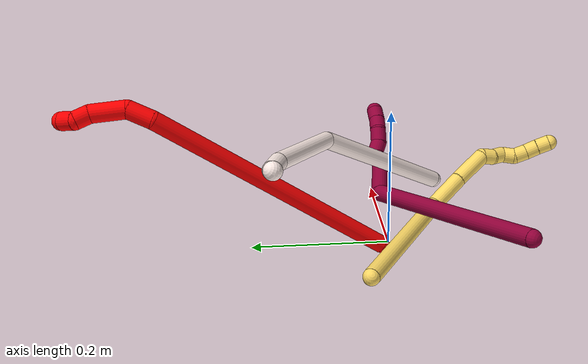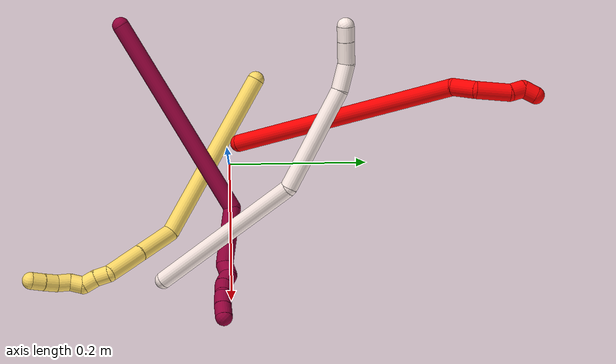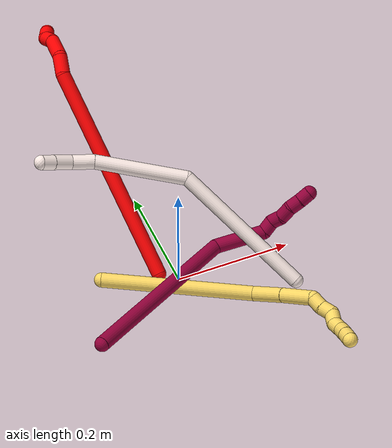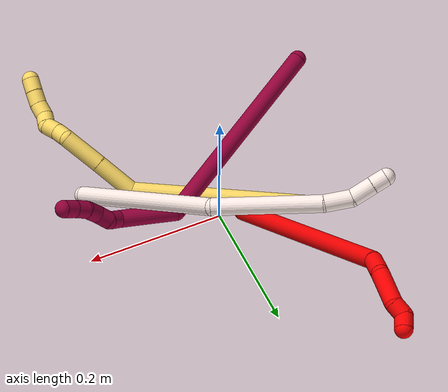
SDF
<sdf version="1.7">
 <world name="default">
  <model name="photoneo_s_sensor">
   <static>1</static>
   <pose>0 0 2 1.57079 1.57079 3.14159</pose>
   <link name="link">
    <inertial><mass>0.1</mass></inertial>
    <sensor name="sensor" type="depth">
     <update_rate>30</update_rate>
     <camera>
      <horizontal_fov>1.22</horizontal_fov>
      <image><width>1920</width><height>1200</height><format>B8G8R8</format></image>
      <clip><near>0.1</near><far>4</far></clip>
      <depth_camera><output>points</output></depth_camera>
     </camera>
     <plugin name="camera_plugin" filename="libgazebo_ros_depth_camera.so">
      <baseline>0.2</baseline>
      <alwaysOn>1</alwaysOn>
      <updateRate>0.0</updateRate>
      <cameraName>camera_ir</cameraName>
      <imageTopicName>/camera/color/image_raw</imageTopicName>
      <cameraInfoTopicName>/camera/color/camera_info</cameraInfoTopicName>
      <depthImageTopicName>/camera/depth/image_raw</depthImageTopicName>
      <depthImageCameraInfoTopicName>/camera/depth/camera_info</depthImageCameraInfoTopicName>
      <pointCloudTopicName>/camera/depth/points</pointCloudTopicName>
      <frameName>fr_optical</frameName>
      <pointCloudCutoff>0.1</pointCloudCutoff>
      <pointCloudCutoffMax>2.0</pointCloudCutoffMax>
      <distortionK1>0</distortionK1>
      <distortionK2>0</distortionK2>
      <distortionK3>0</distortionK3>
      <distortionT1>0</distortionT1>
      <distortionT2>0</distortionT2>
      <CxPrime>0</CxPrime>
      <Cx>0</Cx>
      <Cy>0</Cy>
      <focalLength>0</focalLength>
      <hackBaseline>0</hackBaseline>
     </plugin>
    </sensor>
   </link>
  </model>
  <model name="bin">
   <static>1</static>
   <link name="bottom">
    <collision name="collision-bottom">
     <pose>0 0 -0.01 0 -0 0</pose>
     <geometry><box><size>0.8 0.6 0.02</size></box></geometry>
     <surface>
      <friction><ode><mu>100</mu><mu2>100</mu2></ode></friction>
      <contact><collide_bitmask>65535</collide_bitmask></contact>
     </surface>
    </collision>
   </link>
   <link name="west_wall">
    <collision name="collision-west_wall">
     <pose>-0.41 0 0.1 0 -0 0</pose>
     <geometry><box><size>0.02 0.6 0.2</size></box></geometry>
     <surface>
      <friction><ode><mu>100</mu><mu2>100</mu2></ode></friction>
      <contact><collide_bitmask>65535</collide_bitmask></contact>
     </surface>
    </collision>
   </link>
   <link name="east_wall">
    <collision name="collision-east_wall">
     <pose>0.41 0 0.1 0 -0 0</pose>
     <geometry><box><size>0.02 0.6 0.2</size></box></geometry>
     <surface>
      <friction><ode><mu>100</mu><mu2>100</mu2></ode></friction>
      <contact><collide_bitmask>65535</collide_bitmask></contact>
     </surface>
    </collision>
   </link>
   <link name="south_wall">
    <collision name="collision-south_wall">
     <pose>0 -0.31 0.1 0 -0 0</pose>
     <geometry><box><size>0.8 0.02 0.2</size></box></geometry>
     <surface>
      <friction><ode><mu>100</mu><mu2>100</mu2></ode></friction>
      <contact><collide_bitmask>65535</collide_bitmask></contact>
     </surface>
    </collision>
   </link>
   <link name="north_wall">
    <collision name="collision-north_wall">
     <pose>0 0.31 0.1 0 -0 0</pose>
     <geometry><box><size>0.8 0.02 0.2</size></box></geometry>
     <surface>
      <friction><ode><mu>100</mu><mu2>100</mu2></ode></friction>
      <contact><collide_bitmask>65535</collide_bitmask></contact>
     </surface>
    </collision>
   </link>
  </model>
  <model name="2">
   <static>0</static>
   <link name="2">
    <collision name="collision-cylinder-e_1_1_4">
     <pose>0.016043 0.044769 0.181571 -0.241745 0.085577 -0.010401</pose>
     <geometry><cylinder><radius>0.0125</radius><length>0.375391</length></cylinder></geometry>
     <surface>
      <friction><ode><mu>1.16</mu><mu2>1.16</mu2><slip1>0</slip1><slip2>0</slip2></ode></friction>
      <contact><ode><kp>1e+06</kp><kd>1</kd><max_vel>0</max_vel><min_depth>0.001</min_depth></ode></contact>
     </surface>
    </collision>
    <visual name="visual-cylinder-e_1_1_4">
     <pose>0.016043 0.044769 0.181571 -0.241745 0.085577 -0.010401</pose>
     <geometry><cylinder><radius>0.0125</radius><length>0.375391</length></cylinder></geometry>
     <material><ambient>1 0 0 1</ambient></material>
    </visual>
    <collision name="collision-cylinder-e_2_4_5">
     <pose>0.028187 0.097234 0.378322 -0.469151 -0.225185 0.054029</pose>
     <geometry><cylinder><radius>0.0125</radius><length>0.03492</length></cylinder></geometry>
     <surface>
      <friction><ode><mu>1.16</mu><mu2>1.16</mu2><slip1>0</slip1><slip2>0</slip2></ode></friction>
      <contact><ode><kp>1e+06</kp><kd>1</kd><max_vel>0</max_vel><min_depth>0.001</min_depth></ode></contact>
     </surface>
    </collision>
    <visual name="visual-cylinder-e_2_4_5">
     <pose>0.028187 0.097234 0.378322 -0.469151 -0.225185 0.054029</pose>
     <geometry><cylinder><radius>0.0125</radius><length>0.03492</length></cylinder></geometry>
     <material><ambient>1 0 0 1</ambient></material>
    </visual>
    <collision name="collision-cylinder-e_3_5_6">
     <pose>0.009051 0.107892 0.412308 -0.156276 -0.674955 0.054936</pose>
     <geometry><cylinder><radius>0.0125</radius><length>0.04877</length></cylinder></geometry>
     <surface>
      <friction><ode><mu>1.16</mu><mu2>1.16</mu2><slip1>0</slip1><slip2>0</slip2></ode></friction>
      <contact><ode><kp>1e+06</kp><kd>1</kd><max_vel>0</max_vel><min_depth>0.001</min_depth></ode></contact>
     </surface>
    </collision>
    <visual name="visual-cylinder-e_3_5_6">
     <pose>0.009051 0.107892 0.412308 -0.156276 -0.674955 0.054936</pose>
     <geometry><cylinder><radius>0.0125</radius><length>0.04877</length></cylinder></geometry>
     <material><ambient>1 0 0 1</ambient></material>
    </visual>
    <collision name="collision-cylinder-e_4_6_7">
     <pose>-0.012422 0.107713 0.438738 0.390958 -0.647507 -0.132692</pose>
     <geometry><cylinder><radius>0.0125</radius><length>0.020674</length></cylinder></geometry>
     <surface>
      <friction><ode><mu>1.16</mu><mu2>1.16</mu2><slip1>0</slip1><slip2>0</slip2></ode></friction>
      <contact><ode><kp>1e+06</kp><kd>1</kd><max_vel>0</max_vel><min_depth>0.001</min_depth></ode></contact>
     </surface>
    </collision>
    <visual name="visual-cylinder-e_4_6_7">
     <pose>-0.012422 0.107713 0.438738 0.390958 -0.647507 -0.132692</pose>
     <geometry><cylinder><radius>0.0125</radius><length>0.020674</length></cylinder></geometry>
     <material><ambient>1 0 0 1</ambient></material>
    </visual>
    <collision name="collision-cylinder-e_5_7_2">
     <pose>-0.026008 0.10878 0.451902 -0.649466 -0.812792 0.287755</pose>
     <geometry><cylinder><radius>0.0125</radius><length>0.020244</length></cylinder></geometry>
     <surface>
      <friction><ode><mu>1.16</mu><mu2>1.16</mu2><slip1>0</slip1><slip2>0</slip2></ode></friction>
      <contact><ode><kp>1e+06</kp><kd>1</kd><max_vel>0</max_vel><min_depth>0.001</min_depth></ode></contact>
     </surface>
    </collision>
    <visual name="visual-cylinder-e_5_7_2">
     <pose>-0.026008 0.10878 0.451902 -0.649466 -0.812792 0.287755</pose>
     <geometry><cylinder><radius>0.0125</radius><length>0.020244</length></cylinder></geometry>
     <material><ambient>1 0 0 1</ambient></material>
    </visual>
    <collision name="collision-sphere-2">
     <pose>-0.033359 0.112988 0.457444 0 -0 0</pose>
     <geometry><sphere><radius>0.0125</radius></sphere></geometry>
     <surface>
      <friction><ode><mu>1.16</mu><mu2>1.16</mu2><slip1>0</slip1><slip2>0</slip2></ode></friction>
      <contact><ode><kp>1e+06</kp><kd>1</kd><max_vel>0</max_vel><min_depth>0.001</min_depth></ode></contact>
     </surface>
    </collision>
    <visual name="visual-sphere-2">
     <pose>-0.033359 0.112988 0.457444 0 -0 0</pose>
     <geometry><sphere><radius>0.0125</radius></sphere></geometry>
     <material><ambient>1 0 0 1</ambient></material>
    </visual>
    <collision name="collision-sphere-7">
     <pose>-0.018657 0.104571 0.44636 0 -0 0</pose>
     <geometry><sphere><radius>0.0125</radius></sphere></geometry>
     <surface>
      <friction><ode><mu>1.16</mu><mu2>1.16</mu2><slip1>0</slip1><slip2>0</slip2></ode></friction>
      <contact><ode><kp>1e+06</kp><kd>1</kd><max_vel>0</max_vel><min_depth>0.001</min_depth></ode></contact>
     </surface>
    </collision>
    <visual name="visual-sphere-7">
     <pose>-0.018657 0.104571 0.44636 0 -0 0</pose>
     <geometry><sphere><radius>0.0125</radius></sphere></geometry>
     <material><ambient>1 0 0 1</ambient></material>
    </visual>
    <collision name="collision-sphere-6">
     <pose>-0.006187 0.110855 0.431115 0 -0 0</pose>
     <geometry><sphere><radius>0.0125</radius></sphere></geometry>
     <surface>
      <friction><ode><mu>1.16</mu><mu2>1.16</mu2><slip1>0</slip1><slip2>0</slip2></ode></friction>
      <contact><ode><kp>1e+06</kp><kd>1</kd><max_vel>0</max_vel><min_depth>0.001</min_depth></ode></contact>
     </surface>
    </collision>
    <visual name="visual-sphere-6">
     <pose>-0.006187 0.110855 0.431115 0 -0 0</pose>
     <geometry><sphere><radius>0.0125</radius></sphere></geometry>
     <material><ambient>1 0 0 1</ambient></material>
    </visual>
    <collision name="collision-sphere-5">
     <pose>0.024288 0.104929 0.393502 0 -0 0</pose>
     <geometry><sphere><radius>0.0125</radius></sphere></geometry>
     <surface>
      <friction><ode><mu>1.16</mu><mu2>1.16</mu2><slip1>0</slip1><slip2>0</slip2></ode></friction>
      <contact><ode><kp>1e+06</kp><kd>1</kd><max_vel>0</max_vel><min_depth>0.001</min_depth></ode></contact>
     </surface>
    </collision>
    <visual name="visual-sphere-5">
     <pose>0.024288 0.104929 0.393502 0 -0 0</pose>
     <geometry><sphere><radius>0.0125</radius></sphere></geometry>
     <material><ambient>1 0 0 1</ambient></material>
    </visual>
    <collision name="collision-sphere-1">
     <geometry><sphere><radius>0.0125</radius></sphere></geometry>
     <surface>
      <friction><ode><mu>1.16</mu><mu2>1.16</mu2><slip1>0</slip1><slip2>0</slip2></ode></friction>
      <contact><ode><kp>1e+06</kp><kd>1</kd><max_vel>0</max_vel><min_depth>0.001</min_depth></ode></contact>
     </surface>
    </collision>
    <visual name="visual-sphere-1">
     <geometry><sphere><radius>0.0125</radius></sphere></geometry>
     <material><ambient>1 0 0 1</ambient></material>
    </visual>
    <collision name="collision-sphere-4">
     <pose>0.032085 0.089539 0.363141 0 -0 0</pose>
     <geometry><sphere><radius>0.0125</radius></sphere></geometry>
     <surface>
      <friction><ode><mu>1.16</mu><mu2>1.16</mu2><slip1>0</slip1><slip2>0</slip2></ode></friction>
      <contact><ode><kp>1e+06</kp><kd>1</kd><max_vel>0</max_vel><min_depth>0.001</min_depth></ode></contact>
     </surface>
    </collision>
    <visual name="visual-sphere-4">
     <pose>0.032085 0.089539 0.363141 0 -0 0</pose>
     <geometry><sphere><radius>0.0125</radius></sphere></geometry>
     <material><ambient>1 0 0 1</ambient></material>
    </visual>
    <inertial>
     <pose>0.013329 0.059785 0.239397 0 -0 0</pose>
     <mass>0.5</mass>
     <inertia>
      <ixx>0.004375</ixx>
      <ixy>0</ixy>
      <ixz>0</ixz>
      <iyy>0.004278</iyy>
      <iyz>0</iyz>
      <izz>-0.001391</izz>
     </inertia>
    </inertial>
   </link>
   <pose>-0.029844 0.014866 0.012471 0.843992 -0.907898 -2.17444</pose>
  </model>
  <model name="5">
   <static>0</static>
   <link name="5">
    <collision name="collision-cylinder-e_1_1_4">
     <pose>0.088717 -0.041043 -0.083805 2.68618 0.760142 2.09036</pose>
     <geometry><cylinder><radius>0.0125</radius><length>0.257515</length></cylinder></geometry>
     <surface>
      <friction><ode><mu>1.16</mu><mu2>1.16</mu2><slip1>0</slip1><slip2>0</slip2></ode></friction>
      <contact><ode><kp>1e+06</kp><kd>1</kd><max_vel>0</max_vel><min_depth>0.001</min_depth></ode></contact>
     </surface>
    </collision>
    <visual name="visual-cylinder-e_1_1_4">
     <pose>0.088717 -0.041043 -0.083805 2.68618 0.760142 2.09036</pose>
     <geometry><cylinder><radius>0.0125</radius><length>0.257515</length></cylinder></geometry>
     <material><ambient>1 0.858824 0.4 1</ambient></material>
    </visual>
    <collision name="collision-cylinder-e_2_4_5">
     <pose>0.203193 -0.098193 -0.170536 1.75052 1.00467 1.16414</pose>
     <geometry><cylinder><radius>0.0125</radius><length>0.061042</length></cylinder></geometry>
     <surface>
      <friction><ode><mu>1.16</mu><mu2>1.16</mu2><slip1>0</slip1><slip2>0</slip2></ode></friction>
      <contact><ode><kp>1e+06</kp><kd>1</kd><max_vel>0</max_vel><min_depth>0.001</min_depth></ode></contact>
     </surface>
    </collision>
    <visual name="visual-cylinder-e_2_4_5">
     <pose>0.203193 -0.098193 -0.170536 1.75052 1.00467 1.16414</pose>
     <geometry><cylinder><radius>0.0125</radius><length>0.061042</length></cylinder></geometry>
     <material><ambient>1 0.858824 0.4 1</ambient></material>
    </visual>
    <collision name="collision-cylinder-e_3_5_6">
     <pose>0.253597 -0.130605 -0.177072 1.78863 0.975259 1.16755</pose>
     <geometry><cylinder><radius>0.0125</radius><length>0.059539</length></cylinder></geometry>
     <surface>
      <friction><ode><mu>1.16</mu><mu2>1.16</mu2><slip1>0</slip1><slip2>0</slip2></ode></friction>
      <contact><ode><kp>1e+06</kp><kd>1</kd><max_vel>0</max_vel><min_depth>0.001</min_depth></ode></contact>
     </surface>
    </collision>
    <visual name="visual-cylinder-e_3_5_6">
     <pose>0.253597 -0.130605 -0.177072 1.78863 0.975259 1.16755</pose>
     <geometry><cylinder><radius>0.0125</radius><length>0.059539</length></cylinder></geometry>
     <material><ambient>1 0.858824 0.4 1</ambient></material>
    </visual>
    <collision name="collision-cylinder-e_4_6_7">
     <pose>0.281113 -0.156272 -0.18448 1.95632 0.276868 0.408052</pose>
     <geometry><cylinder><radius>0.0125</radius><length>0.021008</length></cylinder></geometry>
     <surface>
      <friction><ode><mu>1.16</mu><mu2>1.16</mu2><slip1>0</slip1><slip2>0</slip2></ode></friction>
      <contact><ode><kp>1e+06</kp><kd>1</kd><max_vel>0</max_vel><min_depth>0.001</min_depth></ode></contact>
     </surface>
    </collision>
    <visual name="visual-cylinder-e_4_6_7">
     <pose>0.281113 -0.156272 -0.18448 1.95632 0.276868 0.408052</pose>
     <geometry><cylinder><radius>0.0125</radius><length>0.021008</length></cylinder></geometry>
     <material><ambient>1 0.858824 0.4 1</ambient></material>
    </visual>
    <collision name="collision-cylinder-e_5_7_8">
     <pose>0.289242 -0.173382 -0.192515 2.07105 0.537102 0.868977</pose>
     <geometry><cylinder><radius>0.0125</radius><length>0.020555</length></cylinder></geometry>
     <surface>
      <friction><ode><mu>1.16</mu><mu2>1.16</mu2><slip1>0</slip1><slip2>0</slip2></ode></friction>
      <contact><ode><kp>1e+06</kp><kd>1</kd><max_vel>0</max_vel><min_depth>0.001</min_depth></ode></contact>
     </surface>
    </collision>
    <visual name="visual-cylinder-e_5_7_8">
     <pose>0.289242 -0.173382 -0.192515 2.07105 0.537102 0.868977</pose>
     <geometry><cylinder><radius>0.0125</radius><length>0.020555</length></cylinder></geometry>
     <material><ambient>1 0.858824 0.4 1</ambient></material>
    </visual>
    <collision name="collision-cylinder-e_6_8_9">
     <pose>0.294584 -0.191125 -0.19578 1.47401 0.008287 0.007522</pose>
     <geometry><cylinder><radius>0.0125</radius><length>0.020083</length></cylinder></geometry>
     <surface>
      <friction><ode><mu>1.16</mu><mu2>1.16</mu2><slip1>0</slip1><slip2>0</slip2></ode></friction>
      <contact><ode><kp>1e+06</kp><kd>1</kd><max_vel>0</max_vel><min_depth>0.001</min_depth></ode></contact>
     </surface>
    </collision>
    <visual name="visual-cylinder-e_6_8_9">
     <pose>0.294584 -0.191125 -0.19578 1.47401 0.008287 0.007522</pose>
     <geometry><cylinder><radius>0.0125</radius><length>0.020083</length></cylinder></geometry>
     <material><ambient>1 0.858824 0.4 1</ambient></material>
    </visual>
    <collision name="collision-cylinder-e_7_9_10">
     <pose>0.2997 -0.209809 -0.193829 1.45842 0.522189 0.468698</pose>
     <geometry><cylinder><radius>0.0125</radius><length>0.02018</length></cylinder></geometry>
     <surface>
      <friction><ode><mu>1.16</mu><mu2>1.16</mu2><slip1>0</slip1><slip2>0</slip2></ode></friction>
      <contact><ode><kp>1e+06</kp><kd>1</kd><max_vel>0</max_vel><min_depth>0.001</min_depth></ode></contact>
     </surface>
    </collision>
    <visual name="visual-cylinder-e_7_9_10">
     <pose>0.2997 -0.209809 -0.193829 1.45842 0.522189 0.468698</pose>
     <geometry><cylinder><radius>0.0125</radius><length>0.02018</length></cylinder></geometry>
     <material><ambient>1 0.858824 0.4 1</ambient></material>
    </visual>
    <collision name="collision-cylinder-e_8_10_11">
     <pose>0.309577 -0.226707 -0.189817 1.21702 0.505599 0.35614</pose>
     <geometry><cylinder><radius>0.0125</radius><length>0.020002</length></cylinder></geometry>
     <surface>
      <friction><ode><mu>1.16</mu><mu2>1.16</mu2><slip1>0</slip1><slip2>0</slip2></ode></friction>
      <contact><ode><kp>1e+06</kp><kd>1</kd><max_vel>0</max_vel><min_depth>0.001</min_depth></ode></contact>
     </surface>
    </collision>
    <visual name="visual-cylinder-e_8_10_11">
     <pose>0.309577 -0.226707 -0.189817 1.21702 0.505599 0.35614</pose>
     <geometry><cylinder><radius>0.0125</radius><length>0.020002</length></cylinder></geometry>
     <material><ambient>1 0.858824 0.4 1</ambient></material>
    </visual>
    <collision name="collision-cylinder-e_9_11_2">
     <pose>0.318762 -0.243452 -0.18378 1.23228 0.447303 0.319381</pose>
     <geometry><cylinder><radius>0.0125</radius><length>0.020076</length></cylinder></geometry>
     <surface>
      <friction><ode><mu>1.16</mu><mu2>1.16</mu2><slip1>0</slip1><slip2>0</slip2></ode></friction>
      <contact><ode><kp>1e+06</kp><kd>1</kd><max_vel>0</max_vel><min_depth>0.001</min_depth></ode></contact>
     </surface>
    </collision>
    <visual name="visual-cylinder-e_9_11_2">
     <pose>0.318762 -0.243452 -0.18378 1.23228 0.447303 0.319381</pose>
     <geometry><cylinder><radius>0.0125</radius><length>0.020076</length></cylinder></geometry>
     <material><ambient>1 0.858824 0.4 1</ambient></material>
    </visual>
    <collision name="collision-sphere-2">
     <pose>0.323104 -0.251989 -0.180775 0 -0 0</pose>
     <geometry><sphere><radius>0.0125</radius></sphere></geometry>
     <surface>
      <friction><ode><mu>1.16</mu><mu2>1.16</mu2><slip1>0</slip1><slip2>0</slip2></ode></friction>
      <contact><ode><kp>1e+06</kp><kd>1</kd><max_vel>0</max_vel><min_depth>0.001</min_depth></ode></contact>
     </surface>
    </collision>
    <visual name="visual-sphere-2">
     <pose>0.323104 -0.251989 -0.180775 0 -0 0</pose>
     <geometry><sphere><radius>0.0125</radius></sphere></geometry>
     <material><ambient>1 0.858824 0.4 1</ambient></material>
    </visual>
    <collision name="collision-sphere-11">
     <pose>0.31442 -0.234915 -0.186786 0 -0 0</pose>
     <geometry><sphere><radius>0.0125</radius></sphere></geometry>
     <surface>
      <friction><ode><mu>1.16</mu><mu2>1.16</mu2><slip1>0</slip1><slip2>0</slip2></ode></friction>
      <contact><ode><kp>1e+06</kp><kd>1</kd><max_vel>0</max_vel><min_depth>0.001</min_depth></ode></contact>
     </surface>
    </collision>
    <visual name="visual-sphere-11">
     <pose>0.31442 -0.234915 -0.186786 0 -0 0</pose>
     <geometry><sphere><radius>0.0125</radius></sphere></geometry>
     <material><ambient>1 0.858824 0.4 1</ambient></material>
    </visual>
    <collision name="collision-sphere-10">
     <pose>0.304733 -0.218499 -0.192849 0 -0 0</pose>
     <geometry><sphere><radius>0.0125</radius></sphere></geometry>
     <surface>
      <friction><ode><mu>1.16</mu><mu2>1.16</mu2><slip1>0</slip1><slip2>0</slip2></ode></friction>
      <contact><ode><kp>1e+06</kp><kd>1</kd><max_vel>0</max_vel><min_depth>0.001</min_depth></ode></contact>
     </surface>
    </collision>
    <visual name="visual-sphere-10">
     <pose>0.304733 -0.218499 -0.192849 0 -0 0</pose>
     <geometry><sphere><radius>0.0125</radius></sphere></geometry>
     <material><ambient>1 0.858824 0.4 1</ambient></material>
    </visual>
    <collision name="collision-sphere-9">
     <pose>0.294667 -0.201119 -0.19481 0 -0 0</pose>
     <geometry><sphere><radius>0.0125</radius></sphere></geometry>
     <surface>
      <friction><ode><mu>1.16</mu><mu2>1.16</mu2><slip1>0</slip1><slip2>0</slip2></ode></friction>
      <contact><ode><kp>1e+06</kp><kd>1</kd><max_vel>0</max_vel><min_depth>0.001</min_depth></ode></contact>
     </surface>
    </collision>
    <visual name="visual-sphere-9">
     <pose>0.294667 -0.201119 -0.19481 0 -0 0</pose>
     <geometry><sphere><radius>0.0125</radius></sphere></geometry>
     <material><ambient>1 0.858824 0.4 1</ambient></material>
    </visual>
    <collision name="collision-sphere-4">
     <pose>0.177434 -0.082086 -0.16761 0 -0 0</pose>
     <geometry><sphere><radius>0.0125</radius></sphere></geometry>
     <surface>
      <friction><ode><mu>1.16</mu><mu2>1.16</mu2><slip1>0</slip1><slip2>0</slip2></ode></friction>
      <contact><ode><kp>1e+06</kp><kd>1</kd><max_vel>0</max_vel><min_depth>0.001</min_depth></ode></contact>
     </surface>
    </collision>
    <visual name="visual-sphere-4">
     <pose>0.177434 -0.082086 -0.16761 0 -0 0</pose>
     <geometry><sphere><radius>0.0125</radius></sphere></geometry>
     <material><ambient>1 0.858824 0.4 1</ambient></material>
    </visual>
    <collision name="collision-sphere-1">
     <geometry><sphere><radius>0.0125</radius></sphere></geometry>
     <surface>
      <friction><ode><mu>1.16</mu><mu2>1.16</mu2><slip1>0</slip1><slip2>0</slip2></ode></friction>
      <contact><ode><kp>1e+06</kp><kd>1</kd><max_vel>0</max_vel><min_depth>0.001</min_depth></ode></contact>
     </surface>
    </collision>
    <visual name="visual-sphere-1">
     <geometry><sphere><radius>0.0125</radius></sphere></geometry>
     <material><ambient>1 0.858824 0.4 1</ambient></material>
    </visual>
    <collision name="collision-sphere-8">
     <pose>0.294501 -0.18113 -0.196751 0 -0 0</pose>
     <geometry><sphere><radius>0.0125</radius></sphere></geometry>
     <surface>
      <friction><ode><mu>1.16</mu><mu2>1.16</mu2><slip1>0</slip1><slip2>0</slip2></ode></friction>
      <contact><ode><kp>1e+06</kp><kd>1</kd><max_vel>0</max_vel><min_depth>0.001</min_depth></ode></contact>
     </surface>
    </collision>
    <visual name="visual-sphere-8">
     <pose>0.294501 -0.18113 -0.196751 0 -0 0</pose>
     <geometry><sphere><radius>0.0125</radius></sphere></geometry>
     <material><ambient>1 0.858824 0.4 1</ambient></material>
    </visual>
    <collision name="collision-sphere-5">
     <pose>0.228953 -0.1143 -0.173462 0 -0 0</pose>
     <geometry><sphere><radius>0.0125</radius></sphere></geometry>
     <surface>
      <friction><ode><mu>1.16</mu><mu2>1.16</mu2><slip1>0</slip1><slip2>0</slip2></ode></friction>
      <contact><ode><kp>1e+06</kp><kd>1</kd><max_vel>0</max_vel><min_depth>0.001</min_depth></ode></contact>
     </surface>
    </collision>
    <visual name="visual-sphere-5">
     <pose>0.228953 -0.1143 -0.173462 0 -0 0</pose>
     <geometry><sphere><radius>0.0125</radius></sphere></geometry>
     <material><ambient>1 0.858824 0.4 1</ambient></material>
    </visual>
    <collision name="collision-sphere-6">
     <pose>0.278241 -0.146909 -0.180681 0 -0 0</pose>
     <geometry><sphere><radius>0.0125</radius></sphere></geometry>
     <surface>
      <friction><ode><mu>1.16</mu><mu2>1.16</mu2><slip1>0</slip1><slip2>0</slip2></ode></friction>
      <contact><ode><kp>1e+06</kp><kd>1</kd><max_vel>0</max_vel><min_depth>0.001</min_depth></ode></contact>
     </surface>
    </collision>
    <visual name="visual-sphere-6">
     <pose>0.278241 -0.146909 -0.180681 0 -0 0</pose>
     <geometry><sphere><radius>0.0125</radius></sphere></geometry>
     <material><ambient>1 0.858824 0.4 1</ambient></material>
    </visual>
    <collision name="collision-sphere-7">
     <pose>0.283984 -0.165634 -0.18828 0 -0 0</pose>
     <geometry><sphere><radius>0.0125</radius></sphere></geometry>
     <surface>
      <friction><ode><mu>1.16</mu><mu2>1.16</mu2><slip1>0</slip1><slip2>0</slip2></ode></friction>
      <contact><ode><kp>1e+06</kp><kd>1</kd><max_vel>0</max_vel><min_depth>0.001</min_depth></ode></contact>
     </surface>
    </collision>
    <visual name="visual-sphere-7">
     <pose>0.283984 -0.165634 -0.18828 0 -0 0</pose>
     <geometry><sphere><radius>0.0125</radius></sphere></geometry>
     <material><ambient>1 0.858824 0.4 1</ambient></material>
    </visual>
    <inertial>
     <pose>0.17351 -0.097361 -0.131392 0 -0 0</pose>
     <mass>0.5</mass>
     <inertia>
      <ixx>0.000451</ixx>
      <ixy>0</ixy>
      <ixz>0</ixz>
      <iyy>0.001951</iyy>
      <iyz>0</iyz>
      <izz>-0.000553</izz>
     </inertia>
    </inertial>
   </link>
   <pose>-0.123438 0.040904 0.0115 0.221095 -0.796804 -0.351672</pose>
  </model>
  <model name="8">
   <static>0</static>
   <link name="8">
    <collision name="collision-cylinder-e_1_1_4">
     <pose>0.035542 -0.010848 -0.150307 3.06955 0.231614 2.54075</pose>
     <geometry><cylinder><radius>0.0125</radius><length>0.309665</length></cylinder></geometry>
     <surface>
      <friction><ode><mu>1.16</mu><mu2>1.16</mu2><slip1>0</slip1><slip2>0</slip2></ode></friction>
      <contact><ode><kp>1e+06</kp><kd>1</kd><max_vel>0</max_vel><min_depth>0.001</min_depth></ode></contact>
     </surface>
    </collision>
    <visual name="visual-cylinder-e_1_1_4">
     <pose>0.035542 -0.010848 -0.150307 3.06955 0.231614 2.54075</pose>
     <geometry><cylinder><radius>0.0125</radius><length>0.309665</length></cylinder></geometry>
     <material><ambient>0.584314 0 0.227451 1</ambient></material>
    </visual>
    <collision name="collision-cylinder-e_2_4_5">
     <pose>0.103102 -0.010132 -0.32624 -2.71768 0.850248 -2.25419</pose>
     <geometry><cylinder><radius>0.0125</radius><length>0.085218</length></cylinder></geometry>
     <surface>
      <friction><ode><mu>1.16</mu><mu2>1.16</mu2><slip1>0</slip1><slip2>0</slip2></ode></friction>
      <contact><ode><kp>1e+06</kp><kd>1</kd><max_vel>0</max_vel><min_depth>0.001</min_depth></ode></contact>
     </surface>
    </collision>
    <visual name="visual-cylinder-e_2_4_5">
     <pose>0.103102 -0.010132 -0.32624 -2.71768 0.850248 -2.25419</pose>
     <geometry><cylinder><radius>0.0125</radius><length>0.085218</length></cylinder></geometry>
     <material><ambient>0.584314 0 0.227451 1</ambient></material>
    </visual>
    <collision name="collision-cylinder-e_3_5_6">
     <pose>0.137962 0.008251 -0.359688 -2.42468 0.267333 -0.689212</pose>
     <geometry><cylinder><radius>0.0125</radius><length>0.021521</length></cylinder></geometry>
     <surface>
      <friction><ode><mu>1.16</mu><mu2>1.16</mu2><slip1>0</slip1><slip2>0</slip2></ode></friction>
      <contact><ode><kp>1e+06</kp><kd>1</kd><max_vel>0</max_vel><min_depth>0.001</min_depth></ode></contact>
     </surface>
    </collision>
    <visual name="visual-cylinder-e_3_5_6">
     <pose>0.137962 0.008251 -0.359688 -2.42468 0.267333 -0.689212</pose>
     <geometry><cylinder><radius>0.0125</radius><length>0.021521</length></cylinder></geometry>
     <material><ambient>0.584314 0 0.227451 1</ambient></material>
    </visual>
    <collision name="collision-cylinder-e_4_6_7">
     <pose>0.147557 0.022588 -0.369811 -1.86761 0.709588 -0.928449</pose>
     <geometry><cylinder><radius>0.0125</radius><length>0.020727</length></cylinder></geometry>
     <surface>
      <friction><ode><mu>1.16</mu><mu2>1.16</mu2><slip1>0</slip1><slip2>0</slip2></ode></friction>
      <contact><ode><kp>1e+06</kp><kd>1</kd><max_vel>0</max_vel><min_depth>0.001</min_depth></ode></contact>
     </surface>
    </collision>
    <visual name="visual-cylinder-e_4_6_7">
     <pose>0.147557 0.022588 -0.369811 -1.86761 0.709588 -0.928449</pose>
     <geometry><cylinder><radius>0.0125</radius><length>0.020727</length></cylinder></geometry>
     <material><ambient>0.584314 0 0.227451 1</ambient></material>
    </visual>
    <collision name="collision-cylinder-e_5_7_8">
     <pose>0.158594 0.039375 -0.376932 -2.0505 0.389257 -0.628016</pose>
     <geometry><cylinder><radius>0.0125</radius><length>0.022585</length></cylinder></geometry>
     <surface>
      <friction><ode><mu>1.16</mu><mu2>1.16</mu2><slip1>0</slip1><slip2>0</slip2></ode></friction>
      <contact><ode><kp>1e+06</kp><kd>1</kd><max_vel>0</max_vel><min_depth>0.001</min_depth></ode></contact>
     </surface>
    </collision>
    <visual name="visual-cylinder-e_5_7_8">
     <pose>0.158594 0.039375 -0.376932 -2.0505 0.389257 -0.628016</pose>
     <geometry><cylinder><radius>0.0125</radius><length>0.022585</length></cylinder></geometry>
     <material><ambient>0.584314 0 0.227451 1</ambient></material>
    </visual>
    <collision name="collision-cylinder-e_6_8_9">
     <pose>0.168357 0.054752 -0.38759 -2.33343 0.575244 -1.21041</pose>
     <geometry><cylinder><radius>0.0125</radius><length>0.020136</length></cylinder></geometry>
     <surface>
      <friction><ode><mu>1.16</mu><mu2>1.16</mu2><slip1>0</slip1><slip2>0</slip2></ode></friction>
      <contact><ode><kp>1e+06</kp><kd>1</kd><max_vel>0</max_vel><min_depth>0.001</min_depth></ode></contact>
     </surface>
    </collision>
    <visual name="visual-cylinder-e_6_8_9">
     <pose>0.168357 0.054752 -0.38759 -2.33343 0.575244 -1.21041</pose>
     <geometry><cylinder><radius>0.0125</radius><length>0.020136</length></cylinder></geometry>
     <material><ambient>0.584314 0 0.227451 1</ambient></material>
    </visual>
    <collision name="collision-cylinder-e_7_9_2">
     <pose>0.178566 0.066909 -0.399945 -2.39356 0.488871 -1.13221</pose>
     <geometry><cylinder><radius>0.0125</radius><length>0.020148</length></cylinder></geometry>
     <surface>
      <friction><ode><mu>1.16</mu><mu2>1.16</mu2><slip1>0</slip1><slip2>0</slip2></ode></friction>
      <contact><ode><kp>1e+06</kp><kd>1</kd><max_vel>0</max_vel><min_depth>0.001</min_depth></ode></contact>
     </surface>
    </collision>
    <visual name="visual-cylinder-e_7_9_2">
     <pose>0.178566 0.066909 -0.399945 -2.39356 0.488871 -1.13221</pose>
     <geometry><cylinder><radius>0.0125</radius><length>0.020148</length></cylinder></geometry>
     <material><ambient>0.584314 0 0.227451 1</ambient></material>
    </visual>
    <collision name="collision-sphere-2">
     <pose>0.183297 0.072959 -0.406464 0 -0 0</pose>
     <geometry><sphere><radius>0.0125</radius></sphere></geometry>
     <surface>
      <friction><ode><mu>1.16</mu><mu2>1.16</mu2><slip1>0</slip1><slip2>0</slip2></ode></friction>
      <contact><ode><kp>1e+06</kp><kd>1</kd><max_vel>0</max_vel><min_depth>0.001</min_depth></ode></contact>
     </surface>
    </collision>
    <visual name="visual-sphere-2">
     <pose>0.183297 0.072959 -0.406464 0 -0 0</pose>
     <geometry><sphere><radius>0.0125</radius></sphere></geometry>
     <material><ambient>0.584314 0 0.227451 1</ambient></material>
    </visual>
    <collision name="collision-sphere-9">
     <pose>0.173835 0.060859 -0.393425 0 -0 0</pose>
     <geometry><sphere><radius>0.0125</radius></sphere></geometry>
     <surface>
      <friction><ode><mu>1.16</mu><mu2>1.16</mu2><slip1>0</slip1><slip2>0</slip2></ode></friction>
      <contact><ode><kp>1e+06</kp><kd>1</kd><max_vel>0</max_vel><min_depth>0.001</min_depth></ode></contact>
     </surface>
    </collision>
    <visual name="visual-sphere-9">
     <pose>0.173835 0.060859 -0.393425 0 -0 0</pose>
     <geometry><sphere><radius>0.0125</radius></sphere></geometry>
     <material><ambient>0.584314 0 0.227451 1</ambient></material>
    </visual>
    <collision name="collision-sphere-4">
     <pose>0.071083 -0.021695 -0.300615 0 -0 0</pose>
     <geometry><sphere><radius>0.0125</radius></sphere></geometry>
     <surface>
      <friction><ode><mu>1.16</mu><mu2>1.16</mu2><slip1>0</slip1><slip2>0</slip2></ode></friction>
      <contact><ode><kp>1e+06</kp><kd>1</kd><max_vel>0</max_vel><min_depth>0.001</min_depth></ode></contact>
     </surface>
    </collision>
    <visual name="visual-sphere-4">
     <pose>0.071083 -0.021695 -0.300615 0 -0 0</pose>
     <geometry><sphere><radius>0.0125</radius></sphere></geometry>
     <material><ambient>0.584314 0 0.227451 1</ambient></material>
    </visual>
    <collision name="collision-sphere-1">
     <geometry><sphere><radius>0.0125</radius></sphere></geometry>
     <surface>
      <friction><ode><mu>1.16</mu><mu2>1.16</mu2><slip1>0</slip1><slip2>0</slip2></ode></friction>
      <contact><ode><kp>1e+06</kp><kd>1</kd><max_vel>0</max_vel><min_depth>0.001</min_depth></ode></contact>
     </surface>
    </collision>
    <visual name="visual-sphere-1">
     <geometry><sphere><radius>0.0125</radius></sphere></geometry>
     <material><ambient>0.584314 0 0.227451 1</ambient></material>
    </visual>
    <collision name="collision-sphere-8">
     <pose>0.16288 0.048644 -0.381754 0 -0 0</pose>
     <geometry><sphere><radius>0.0125</radius></sphere></geometry>
     <surface>
      <friction><ode><mu>1.16</mu><mu2>1.16</mu2><slip1>0</slip1><slip2>0</slip2></ode></friction>
      <contact><ode><kp>1e+06</kp><kd>1</kd><max_vel>0</max_vel><min_depth>0.001</min_depth></ode></contact>
     </surface>
    </collision>
    <visual name="visual-sphere-8">
     <pose>0.16288 0.048644 -0.381754 0 -0 0</pose>
     <geometry><sphere><radius>0.0125</radius></sphere></geometry>
     <material><ambient>0.584314 0 0.227451 1</ambient></material>
    </visual>
    <collision name="collision-sphere-5">
     <pose>0.13512 0.001432 -0.351864 0 -0 0</pose>
     <geometry><sphere><radius>0.0125</radius></sphere></geometry>
     <surface>
      <friction><ode><mu>1.16</mu><mu2>1.16</mu2><slip1>0</slip1><slip2>0</slip2></ode></friction>
      <contact><ode><kp>1e+06</kp><kd>1</kd><max_vel>0</max_vel><min_depth>0.001</min_depth></ode></contact>
     </surface>
    </collision>
    <visual name="visual-sphere-5">
     <pose>0.13512 0.001432 -0.351864 0 -0 0</pose>
     <geometry><sphere><radius>0.0125</radius></sphere></geometry>
     <material><ambient>0.584314 0 0.227451 1</ambient></material>
    </visual>
    <collision name="collision-sphere-6">
     <pose>0.140805 0.01507 -0.367511 0 -0 0</pose>
     <geometry><sphere><radius>0.0125</radius></sphere></geometry>
     <surface>
      <friction><ode><mu>1.16</mu><mu2>1.16</mu2><slip1>0</slip1><slip2>0</slip2></ode></friction>
      <contact><ode><kp>1e+06</kp><kd>1</kd><max_vel>0</max_vel><min_depth>0.001</min_depth></ode></contact>
     </surface>
    </collision>
    <visual name="visual-sphere-6">
     <pose>0.140805 0.01507 -0.367511 0 -0 0</pose>
     <geometry><sphere><radius>0.0125</radius></sphere></geometry>
     <material><ambient>0.584314 0 0.227451 1</ambient></material>
    </visual>
    <collision name="collision-sphere-7">
     <pose>0.154309 0.030107 -0.37211 0 -0 0</pose>
     <geometry><sphere><radius>0.0125</radius></sphere></geometry>
     <surface>
      <friction><ode><mu>1.16</mu><mu2>1.16</mu2><slip1>0</slip1><slip2>0</slip2></ode></friction>
      <contact><ode><kp>1e+06</kp><kd>1</kd><max_vel>0</max_vel><min_depth>0.001</min_depth></ode></contact>
     </surface>
    </collision>
    <visual name="visual-sphere-7">
     <pose>0.154309 0.030107 -0.37211 0 -0 0</pose>
     <geometry><sphere><radius>0.0125</radius></sphere></geometry>
     <material><ambient>0.584314 0 0.227451 1</ambient></material>
    </visual>
    <inertial>
     <pose>0.072778 -0.000474 -0.228256 0 -0 0</pose>
     <mass>0.5</mass>
     <inertia>
      <ixx>-0.000666</ixx>
      <ixy>0</ixy>
      <ixz>0</ixz>
      <iyy>0.003454</iyy>
      <iyz>0</iyz>
      <izz>-0.000494</izz>
     </inertia>
    </inertial>
   </link>
   <pose>-0.193963 -0.15259 0.094886 1.5183 0.120557 -0.816762</pose>
  </model>
  <model name="11">
   <static>0</static>
   <link name="11">
    <collision name="collision-cylinder-e_1_1_4">
     <pose>-0.001364 0.005533 0.124399 -0.044452 -0.010952 0.000243</pose>
     <geometry><cylinder><radius>0.0125</radius><length>0.249059</length></cylinder></geometry>
     <surface>
      <friction><ode><mu>1.16</mu><mu2>1.16</mu2><slip1>0</slip1><slip2>0</slip2></ode></friction>
      <contact><ode><kp>1e+06</kp><kd>1</kd><max_vel>0</max_vel><min_depth>0.001</min_depth></ode></contact>
     </surface>
    </collision>
    <visual name="visual-cylinder-e_1_1_4">
     <pose>-0.001364 0.005533 0.124399 -0.044452 -0.010952 0.000243</pose>
     <geometry><cylinder><radius>0.0125</radius><length>0.249059</length></cylinder></geometry>
     <material><ambient>1 0.933333 0.909804 1</ambient></material>
    </visual>
    <collision name="collision-cylinder-e_2_4_5">
     <pose>-0.040609 0.035512 0.312908 -0.364277 -0.504454 0.094861</pose>
     <geometry><cylinder><radius>0.0125</radius><length>0.15675</length></cylinder></geometry>
     <surface>
      <friction><ode><mu>1.16</mu><mu2>1.16</mu2><slip1>0</slip1><slip2>0</slip2></ode></friction>
      <contact><ode><kp>1e+06</kp><kd>1</kd><max_vel>0</max_vel><min_depth>0.001</min_depth></ode></contact>
     </surface>
    </collision>
    <visual name="visual-cylinder-e_2_4_5">
     <pose>-0.040609 0.035512 0.312908 -0.364277 -0.504454 0.094861</pose>
     <geometry><cylinder><radius>0.0125</radius><length>0.15675</length></cylinder></geometry>
     <material><ambient>1 0.933333 0.909804 1</ambient></material>
    </visual>
    <collision name="collision-cylinder-e_3_5_6">
     <pose>-0.091841 0.065329 0.390364 -0.382689 -0.748099 0.151785</pose>
     <geometry><cylinder><radius>0.0125</radius><length>0.039254</length></cylinder></geometry>
     <surface>
      <friction><ode><mu>1.16</mu><mu2>1.16</mu2><slip1>0</slip1><slip2>0</slip2></ode></friction>
      <contact><ode><kp>1e+06</kp><kd>1</kd><max_vel>0</max_vel><min_depth>0.001</min_depth></ode></contact>
     </surface>
    </collision>
    <visual name="visual-cylinder-e_3_5_6">
     <pose>-0.091841 0.065329 0.390364 -0.382689 -0.748099 0.151785</pose>
     <geometry><cylinder><radius>0.0125</radius><length>0.039254</length></cylinder></geometry>
     <material><ambient>1 0.933333 0.909804 1</ambient></material>
    </visual>
    <collision name="collision-cylinder-e_4_6_7">
     <pose>-0.118155 0.069406 0.413695 0.12896 -0.910416 -0.063192</pose>
     <geometry><cylinder><radius>0.0125</radius><length>0.032828</length></cylinder></geometry>
     <surface>
      <friction><ode><mu>1.16</mu><mu2>1.16</mu2><slip1>0</slip1><slip2>0</slip2></ode></friction>
      <contact><ode><kp>1e+06</kp><kd>1</kd><max_vel>0</max_vel><min_depth>0.001</min_depth></ode></contact>
     </surface>
    </collision>
    <visual name="visual-cylinder-e_4_6_7">
     <pose>-0.118155 0.069406 0.413695 0.12896 -0.910416 -0.063192</pose>
     <geometry><cylinder><radius>0.0125</radius><length>0.032828</length></cylinder></geometry>
     <material><ambient>1 0.933333 0.909804 1</ambient></material>
    </visual>
    <collision name="collision-cylinder-e_5_7_2">
     <pose>-0.139866 0.067405 0.430401 0.104714 -0.912983 -0.051459</pose>
     <geometry><cylinder><radius>0.0125</radius><length>0.022109</length></cylinder></geometry>
     <surface>
      <friction><ode><mu>1.16</mu><mu2>1.16</mu2><slip1>0</slip1><slip2>0</slip2></ode></friction>
      <contact><ode><kp>1e+06</kp><kd>1</kd><max_vel>0</max_vel><min_depth>0.001</min_depth></ode></contact>
     </surface>
    </collision>
    <visual name="visual-cylinder-e_5_7_2">
     <pose>-0.139866 0.067405 0.430401 0.104714 -0.912983 -0.051459</pose>
     <geometry><cylinder><radius>0.0125</radius><length>0.022109</length></cylinder></geometry>
     <material><ambient>1 0.933333 0.909804 1</ambient></material>
    </visual>
    <collision name="collision-sphere-2">
     <pose>-0.148614 0.066698 0.437123 0 -0 0</pose>
     <geometry><sphere><radius>0.0125</radius></sphere></geometry>
     <surface>
      <friction><ode><mu>1.16</mu><mu2>1.16</mu2><slip1>0</slip1><slip2>0</slip2></ode></friction>
      <contact><ode><kp>1e+06</kp><kd>1</kd><max_vel>0</max_vel><min_depth>0.001</min_depth></ode></contact>
     </surface>
    </collision>
    <visual name="visual-sphere-2">
     <pose>-0.148614 0.066698 0.437123 0 -0 0</pose>
     <geometry><sphere><radius>0.0125</radius></sphere></geometry>
     <material><ambient>1 0.933333 0.909804 1</ambient></material>
    </visual>
    <collision name="collision-sphere-7">
     <pose>-0.131118 0.068111 0.42368 0 -0 0</pose>
     <geometry><sphere><radius>0.0125</radius></sphere></geometry>
     <surface>
      <friction><ode><mu>1.16</mu><mu2>1.16</mu2><slip1>0</slip1><slip2>0</slip2></ode></friction>
      <contact><ode><kp>1e+06</kp><kd>1</kd><max_vel>0</max_vel><min_depth>0.001</min_depth></ode></contact>
     </surface>
    </collision>
    <visual name="visual-sphere-7">
     <pose>-0.131118 0.068111 0.42368 0 -0 0</pose>
     <geometry><sphere><radius>0.0125</radius></sphere></geometry>
     <material><ambient>1 0.933333 0.909804 1</ambient></material>
    </visual>
    <collision name="collision-sphere-6">
     <pose>-0.105192 0.070701 0.40371 0 -0 0</pose>
     <geometry><sphere><radius>0.0125</radius></sphere></geometry>
     <surface>
      <friction><ode><mu>1.16</mu><mu2>1.16</mu2><slip1>0</slip1><slip2>0</slip2></ode></friction>
      <contact><ode><kp>1e+06</kp><kd>1</kd><max_vel>0</max_vel><min_depth>0.001</min_depth></ode></contact>
     </surface>
    </collision>
    <visual name="visual-sphere-6">
     <pose>-0.105192 0.070701 0.40371 0 -0 0</pose>
     <geometry><sphere><radius>0.0125</radius></sphere></geometry>
     <material><ambient>1 0.933333 0.909804 1</ambient></material>
    </visual>
    <collision name="collision-sphere-5">
     <pose>-0.07849 0.059957 0.377019 0 -0 0</pose>
     <geometry><sphere><radius>0.0125</radius></sphere></geometry>
     <surface>
      <friction><ode><mu>1.16</mu><mu2>1.16</mu2><slip1>0</slip1><slip2>0</slip2></ode></friction>
      <contact><ode><kp>1e+06</kp><kd>1</kd><max_vel>0</max_vel><min_depth>0.001</min_depth></ode></contact>
     </surface>
    </collision>
    <visual name="visual-sphere-5">
     <pose>-0.07849 0.059957 0.377019 0 -0 0</pose>
     <geometry><sphere><radius>0.0125</radius></sphere></geometry>
     <material><ambient>1 0.933333 0.909804 1</ambient></material>
    </visual>
    <collision name="collision-sphere-1">
     <geometry><sphere><radius>0.0125</radius></sphere></geometry>
     <surface>
      <friction><ode><mu>1.16</mu><mu2>1.16</mu2><slip1>0</slip1><slip2>0</slip2></ode></friction>
      <contact><ode><kp>1e+06</kp><kd>1</kd><max_vel>0</max_vel><min_depth>0.001</min_depth></ode></contact>
     </surface>
    </collision>
    <visual name="visual-sphere-1">
     <geometry><sphere><radius>0.0125</radius></sphere></geometry>
     <material><ambient>1 0.933333 0.909804 1</ambient></material>
    </visual>
    <collision name="collision-sphere-4">
     <pose>-0.002728 0.011067 0.248798 0 -0 0</pose>
     <geometry><sphere><radius>0.0125</radius></sphere></geometry>
     <surface>
      <friction><ode><mu>1.16</mu><mu2>1.16</mu2><slip1>0</slip1><slip2>0</slip2></ode></friction>
      <contact><ode><kp>1e+06</kp><kd>1</kd><max_vel>0</max_vel><min_depth>0.001</min_depth></ode></contact>
     </surface>
    </collision>
    <visual name="visual-sphere-4">
     <pose>-0.002728 0.011067 0.248798 0 -0 0</pose>
     <geometry><sphere><radius>0.0125</radius></sphere></geometry>
     <material><ambient>1 0.933333 0.909804 1</ambient></material>
    </visual>
    <inertial>
     <pose>-0.034563 0.026555 0.236902 0 -0 0</pose>
     <mass>0.5</mass>
     <inertia>
      <ixx>0.001607</ixx>
      <ixy>0</ixy>
      <ixz>0</ixz>
      <iyy>0.001651</iyy>
      <iyz>0</iyz>
      <izz>5.5e-05</izz>
     </inertia>
    </inertial>
   </link>
   <pose>0.170873 -0.098006 0.024603 -1.02805 -0.017961 0.551299</pose>
  </model>
 </world>
</sdf>
